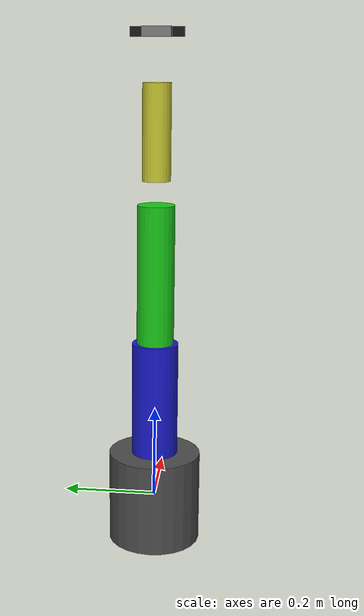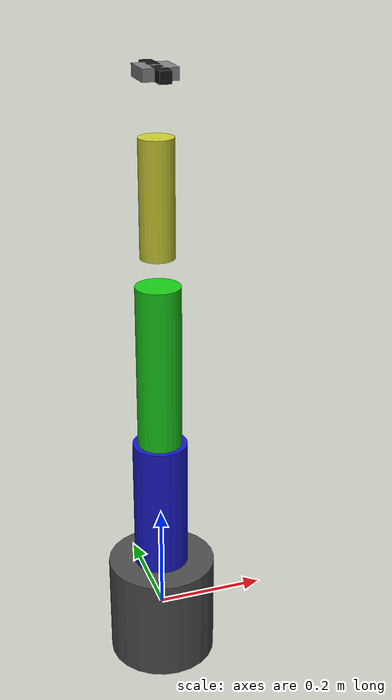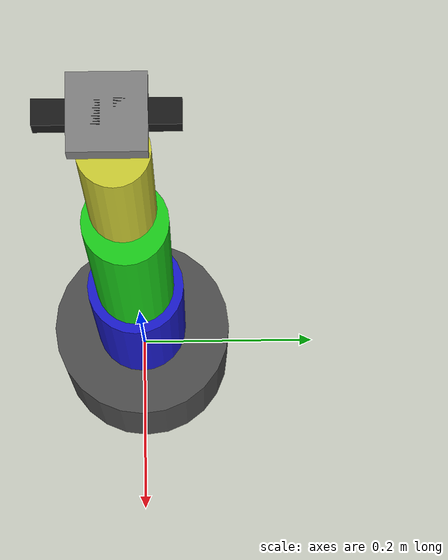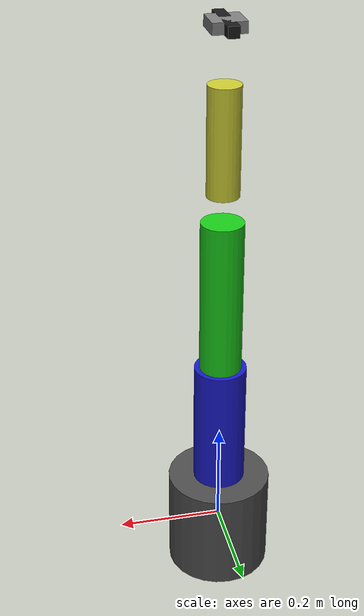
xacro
<?xml version="1.0"?>
<robot name="trr_robot">
    <!-- Base del robot -->
    <link name="base_link">
        <visual>
            <geometry>
                <cylinder radius="0.1" length="0.2"/>
            </geometry>
            <material name="dark_gray">
                <color rgba="0.3 0.3 0.3 1"/>
            </material>
        </visual>
    </link>

    <!-- Articulación torsional -->
    <joint name="torsional_joint" type="revolute">
        <parent link="base_link"/>
        <child link="link1"/>
        <origin xyz="0 0 0.2"/>
        <axis xyz="0 0 1"/>
        <limit lower="-1.57" upper="1.57" effort="50" velocity="1.0"/>
    </joint>
    <link name="link1">
        <visual>
            <geometry>
                <cylinder radius="0.05" length="0.3"/>
            </geometry>
            <material name="blue">
                <color rgba="0.1 0.1 0.8 1"/>
            </material>
        </visual>
    </link>

    <!-- Articulación rotacional 1 -->
    <joint name="revolute_joint1" type="revolute">
        <parent link="link1"/>
        <child link="link2"/>
        <origin xyz="0 0 0.3"/>
        <axis xyz="0 1 0"/>
        <limit lower="-1.57" upper="1.57" effort="50" velocity="1.0"/>
    </joint>
    <link name="link2">
        <visual>
            <geometry>
                <cylinder radius="0.04" length="0.3"/>
            </geometry>
            <material name="green">
                <color rgba="0.1 0.8 0.1 1"/>
            </material>
        </visual>
    </link>

    <!-- Articulación rotacional 2 -->
    <joint name="revolute_joint2" type="revolute">
        <parent link="link2"/>
        <child link="link3"/>
        <origin xyz="0 0 0.3"/>
        <axis xyz="0 1 0"/>
        <limit lower="-1.57" upper="1.57" effort="50" velocity="1.0"/>
    </joint>
    <link name="link3">
        <visual>
            <geometry>
                <cylinder radius="0.03" length="0.2"/>
            </geometry>
            <material name="yellow">
                <color rgba="0.8 0.8 0.2 1"/>
            </material>
        </visual>
    </link>

    <!-- Gripper (garra) -->
    <joint name="gripper_joint" type="fixed">
        <parent link="link3"/>
        <child link="gripper_base"/>
        <origin xyz="0 0 0.2"/>
    </joint>
    <link name="gripper_base">
        <visual>
            <geometry>
                <box size="0.06 0.06 0.02"/> <!-- Base del gripper -->
            </geometry>
            <material name="gray">
                <color rgba="0.5 0.5 0.5 1"/>
            </material>
        </visual>
    </link>

    <!-- Dedo izquierdo -->
    <joint name="left_finger_joint" type="prismatic">
        <parent link="gripper_base"/>
        <child link="left_finger"/>
        <origin xyz="0 0.03 0"/>
        <axis xyz="0 1 0"/>
        <limit lower="0" upper="0.025" effort="10" velocity="0.2"/>
    </joint>
    <link name="left_finger">
        <visual>
            <geometry>
                <box size="0.02 0.05 0.02"/> <!-- Forma del dedo -->
            </geometry>
            <material name="black">
                <color rgba="0.1 0.1 0.1 1"/>
            </material>
        </visual>
    </link>

    <!-- Dedo derecho -->
    <joint name="right_finger_joint" type="prismatic">
        <parent link="gripper_base"/>
        <child link="right_finger"/>
        <origin xyz="0 -0.03 0"/>
        <axis xyz="0 -1 0"/>
        <limit lower="0" upper="0.025" effort="10" velocity="0.2"/>
    </joint>
    <link name="right_finger">
        <visual>
            <geometry>
                <box size="0.02 0.05 0.02"/>
            </geometry>
            <material name="black"/>
        </visual>
    </link>
</robot>
